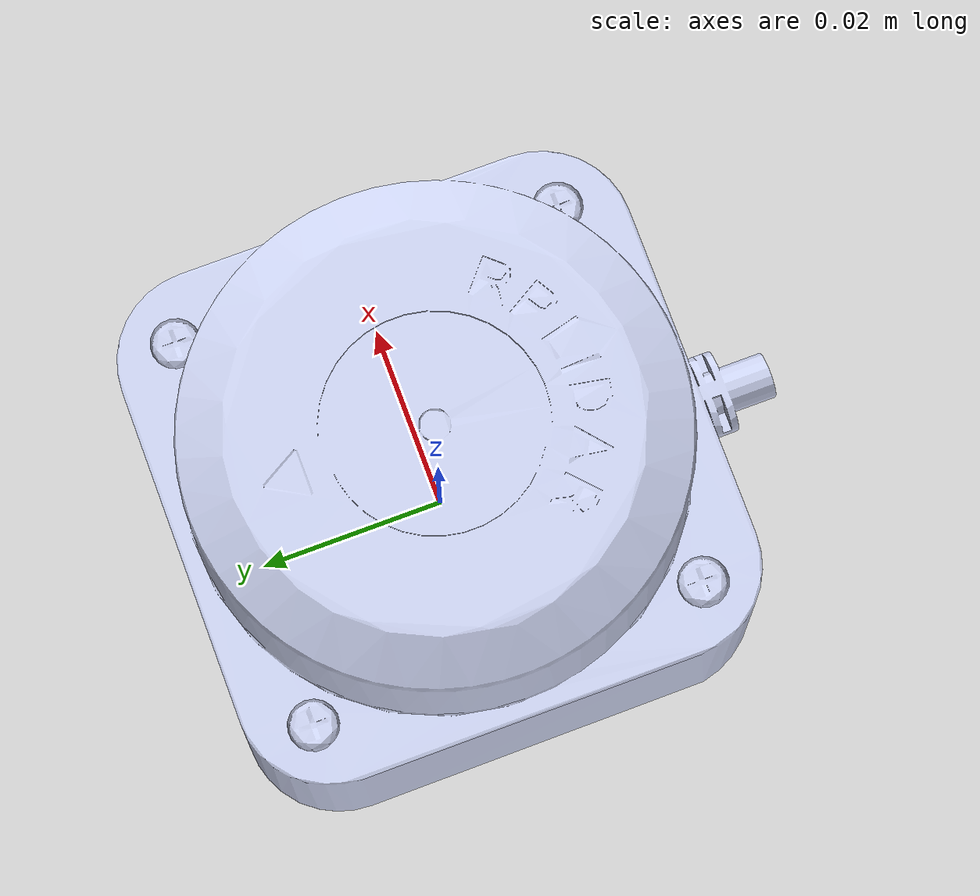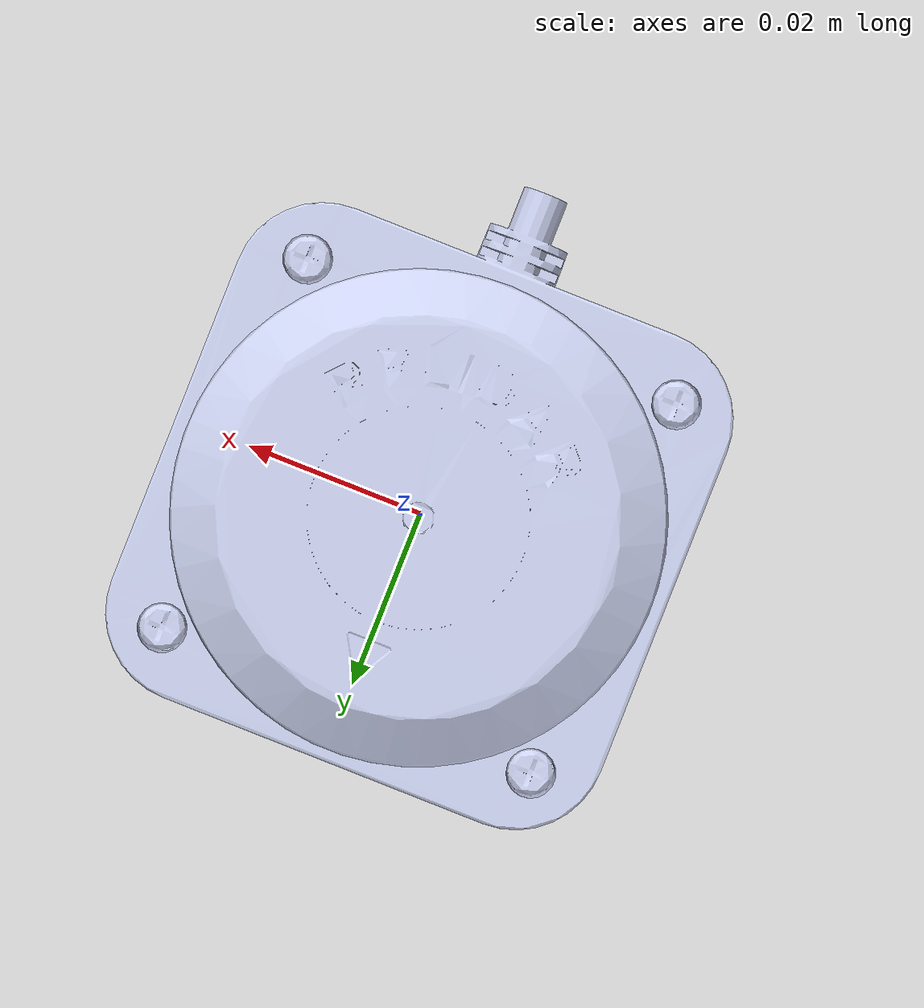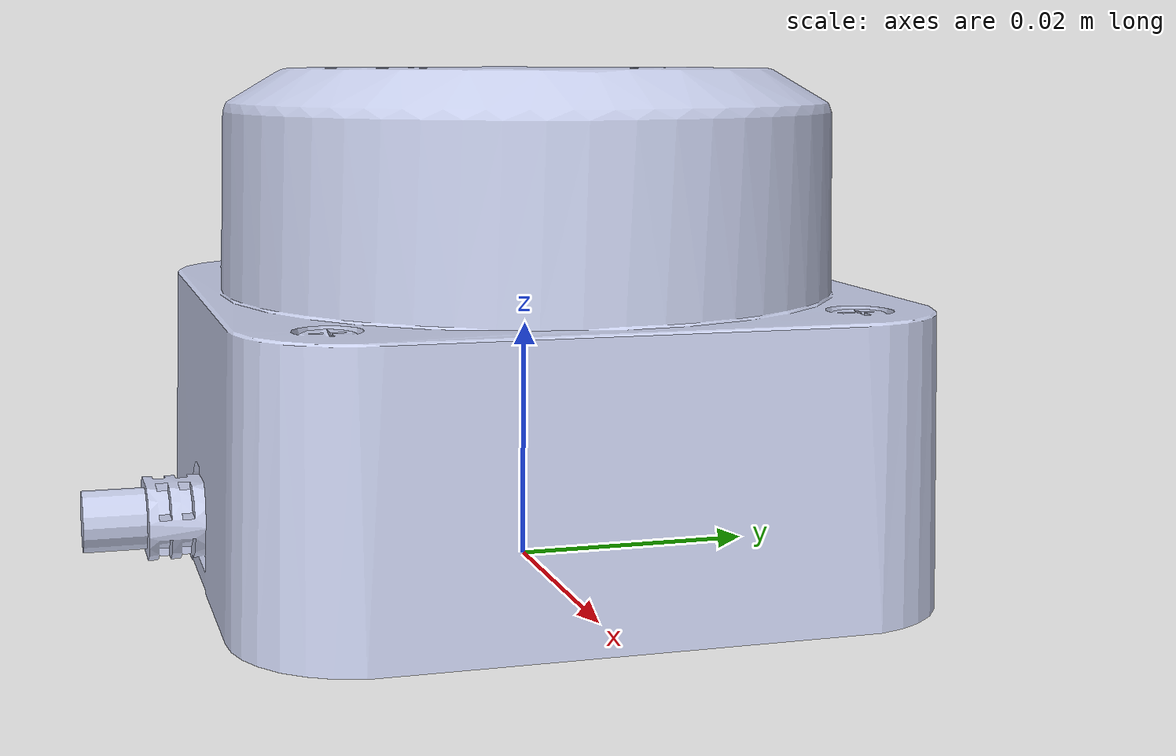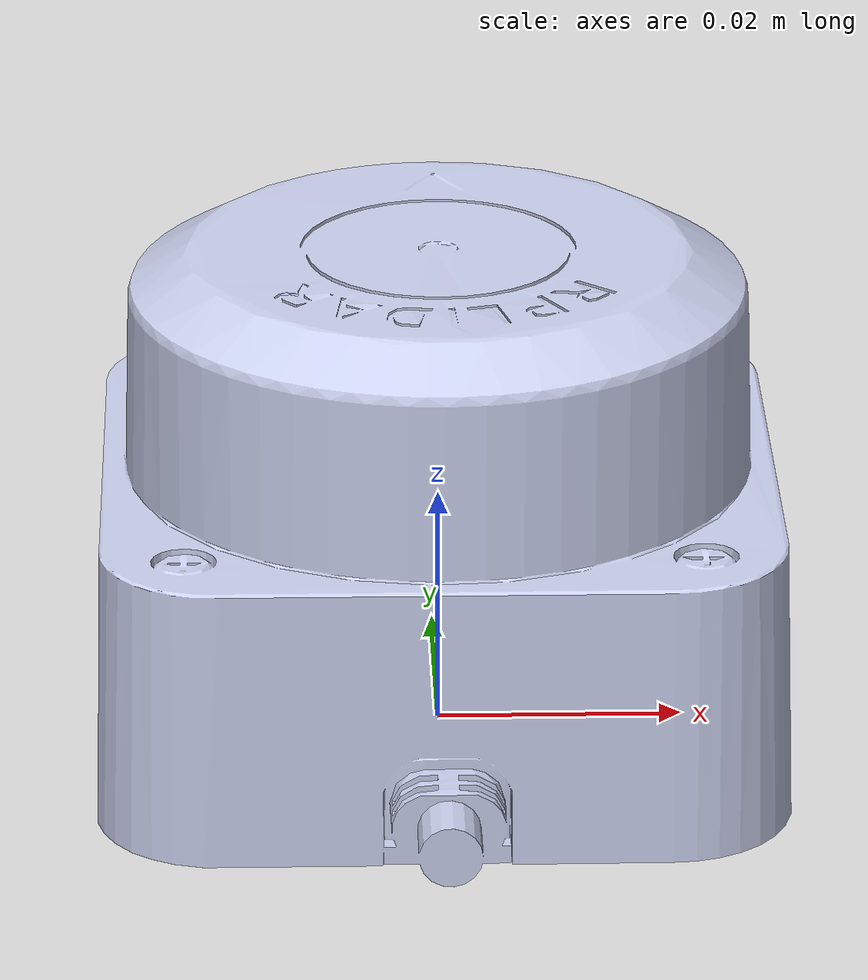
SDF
<?xml version="1.0"?>
<sdf version="1.10">
  <model name="RPLIDAR_C1_v1">
    <static>true</static>
    <link name="lidar_link">
      <visual name="lidar_mesh">
        <geometry>
          <mesh>
            <uri>model://RPLIDAR_C1_v1/meshes/RPLIDAR C1 v1.obj</uri>
          </mesh>
        </geometry>
        <material>
          <ambient>0.792157 0.819608 0.933333 1</ambient>
          <diffuse>0.792157 0.819608 0.933333 1</diffuse>
          <specular>0.2 0.2 0.2 1</specular>
        </material>
      </visual>
      <sensor name="rover_lidar" type="gpu_lidar">
        <pose>0 0 0.03 0 0 0</pose>
        <topic>/small_rover/lidar/scan</topic>
        <update_rate>10</update_rate>
        <ray>
          <scan>
            <horizontal>
              <samples>360</samples>
              <resolution>1</resolution>
              <min_angle>-3.141592654</min_angle>
              <max_angle>3.141592654</max_angle>
            </horizontal>
            <vertical>
              <samples>1</samples>
              <resolution>1</resolution>
              <min_angle>0</min_angle>
              <max_angle>0</max_angle>
            </vertical>
          </scan>
          <range>
            <min>0.02</min>
            <max>12.0</max>
            <resolution>0.001</resolution>
          </range>
        </ray>
        <always_on>true</always_on>
        <visualize>true</visualize>
      </sensor>
    </link>
  </model>
</sdf>
